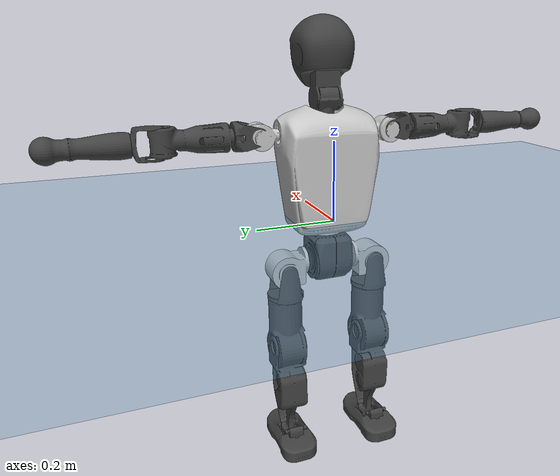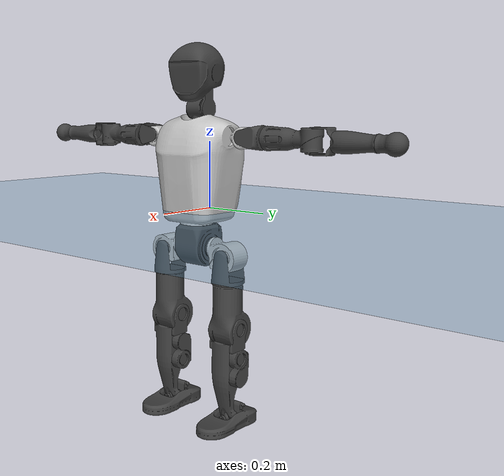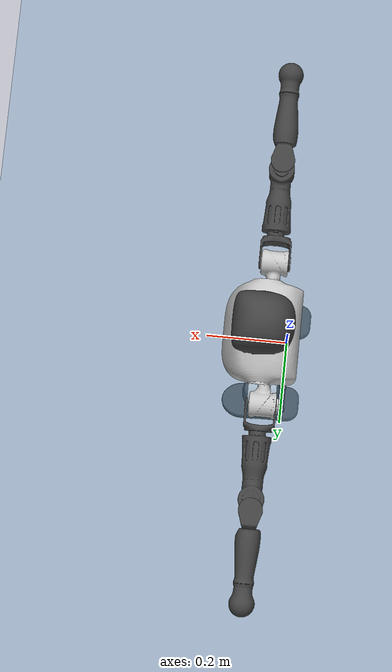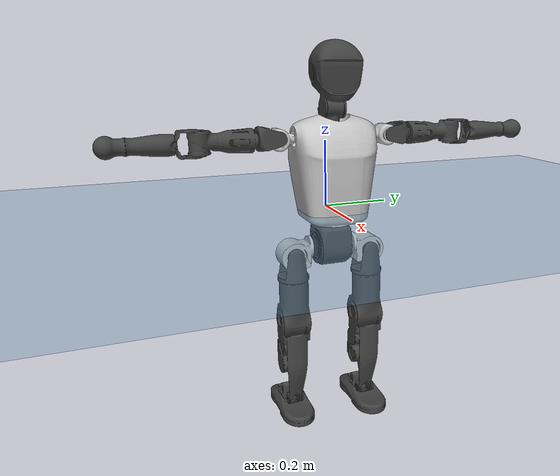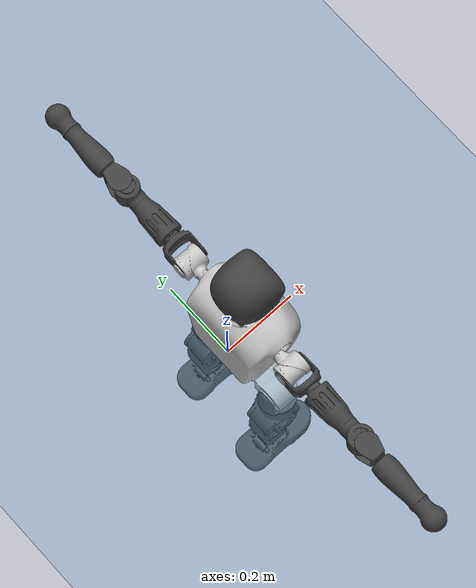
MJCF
<mujoco model="T1">
  <compiler angle="radian" assetdir="assets" balanceinertia="true" inertiafromgeom="false"/>

  <option timestep="0.005" density="1.2" viscosity="2e-05"/>

  <size nkey="1"/>

  <visual>
    <quality shadowsize="8192"/>
    <map shadowclip="0.5"/>
  </visual>

  <default>
    <default class="/">
      <joint armature="0.01" damping="0.01" frictionloss="0.1"/>
      <geom contype="0" conaffinity="0" group="1" solref="-1000 -80"/>
      <site size="0.01 0.005 0.005" group="5"/>
      <general forcelimited="true" biastype="affine" gainprm="25" biasprm="0 -25 -0.6"/>
      <default class="t1">
        <geom rgba="0.25 0.25 0.25 1"/>
        <default class="visual">
          <geom type="mesh" group="2"/>
        </default>
        <default class="collision">
          <geom group="3"/>
        </default>
        <default class="foot">
          <geom size="0.1115 0.05 0.015" type="box" condim="6" group="4" priority="1" solimp="0.015 1 0.015"/>
        </default>
        <default class="reward_collision_sphere">
          <geom group="5" rgba="1 0 0 1"/>
        </default>
      </default>
    </default>
  </default>

  <asset>
    <texture type="skybox" colorspace="auto" name="//unnamed_texture_0" builtin="gradient" rgb1="0.95 0.95 0.95" rgb2="0.95 0.95 0.95" width="100" height="600"/>
    <texture type="2d" colorspace="auto" name="texplane" builtin="checker" rgb1="0.345 0.575 0.748" rgb2="0.345 0.575 0.748" markrgb="1 1 1" width="512" height="512"/>
    <material name="MatPlane" class="/" texture="texplane" texuniform="true" texrepeat="2 2" specular="0.9"/>
    <mesh name="Trunk" class="/" file="Trunk.stl"/>
    <mesh name="H1" class="/" file="H1.stl"/>
    <mesh name="H2" class="/" file="H2.stl"/>
    <mesh name="AL1" class="/" file="AL1.stl"/>
    <mesh name="AL2" class="/" file="AL2.stl"/>
    <mesh name="AL3" class="/" file="AL3.stl"/>
    <mesh name="left_hand_link" class="/" file="left_hand_link.stl"/>
    <mesh name="AR1" class="/" file="AR1.stl"/>
    <mesh name="AR2" class="/" file="AR2.stl"/>
    <mesh name="AR3" class="/" file="AR3.stl"/>
    <mesh name="right_hand_link" class="/" file="right_hand_link.stl"/>
    <mesh name="Waist" class="/" file="Waist.stl"/>
    <mesh name="Hip_Pitch_Left" class="/" file="Hip_Pitch_Left.stl"/>
    <mesh name="Hip_Roll_Left" class="/" file="Hip_Roll_Left.stl"/>
    <mesh name="Hip_Yaw_Left" class="/" file="Hip_Yaw_Left.stl"/>
    <mesh name="Shank_Left" class="/" file="Shank_Left.stl"/>
    <mesh name="Ankle_Cross_Left" class="/" file="Ankle_Cross_Left.stl"/>
    <mesh name="left_foot_link" class="/" file="left_foot_link.stl"/>
    <mesh name="Hip_Pitch_Right" class="/" file="Hip_Pitch_Right.stl"/>
    <mesh name="Hip_Roll_Right" class="/" file="Hip_Roll_Right.stl"/>
    <mesh name="Hip_Yaw_Right" class="/" file="Hip_Yaw_Right.stl"/>
    <mesh name="Shank_Right" class="/" file="Shank_Right.stl"/>
    <mesh name="Ankle_Cross_Right" class="/" file="Ankle_Cross_Right.stl"/>
    <mesh name="right_foot_link" class="/" file="right_foot_link.stl"/>
  </asset>

  <worldbody>
    <geom name="floor" class="/" size="100 100 0.125" type="plane" group="0" material="MatPlane"/>
    <light name="toplight_shadow" class="/" pos="0 0 5" dir="0.0990148 0.0990148 -0.990148" type="directional" ambient="0.04 0.04 0.04" diffuse="0.55 0.55 0.55" specular="0.12 0.12 0.12"/>
    <light name="toplight_fill" class="/" pos="0 0 5" dir="0.0990148 0.0990148 -0.990148" type="directional" castshadow="false" ambient="0.04 0.04 0.04" diffuse="0.3 0.3 0.3" specular="0.08 0.08 0.08"/>
    <body name="trunk" childclass="t1" pos="0.000689741 0.00129265 0.0019523" quat="0.999999 -0.00128998 0.000223316 0.000438559">
      <inertial pos="0.0427101 -0.00061159 0.102709" quat="0.999957 -0.000324862 -0.00927009 6.61553e-05" mass="11.2201" diaginertia="0.0279956 0.160505 0.0477274"/>
      <joint name="//unnamed_joint_0" type="free" armature="0" damping="0" frictionloss="0"/>
      <geom name="//unnamed_geom_1" class="visual" rgba="0.76 0.76 0.76 1" mesh="Trunk"/>
      <geom name="//unnamed_geom_2" class="collision" size="0.0727329 0.0969772 0.145466" pos="0.0474185 0 0.116503" type="box"/>
      <geom name="//unnamed_geom_3" class="reward_collision_sphere" size="0.111524" pos="0.0474185 0 0.0970859"/>
      <geom name="//unnamed_geom_4" class="reward_collision_sphere" size="0.0145466" pos="0.0474185 0.0975927 0"/>
      <geom name="//unnamed_geom_5" class="reward_collision_sphere" size="0.0145466" pos="0.0474185 -0.0975927 0"/>
      <geom name="//unnamed_geom_6" class="reward_collision_sphere" size="0.0145466" pos="0.0474185 0.122852 0.174755"/>
      <geom name="//unnamed_geom_7" class="reward_collision_sphere" size="0.0145466" pos="0.0474185 -0.122852 0.174755"/>
      <site name="imu" pos="0.00893149 -0.00494138 0.00461793" size="0.00969772"/>
      <camera name="track" pos="0 -2.2963 0" quat="0.707107 0.707107 0 0" mode="trackcom"/>
      <camera name="ego_camera" pos="0.0964175 0 0.407761" quat="-0.5 -0.5 0.5 0.5"/>
      <body name="H1" pos="0.0497202 -0.000195456 0.235799" quat="1 -0.000563672 0.00031429 8.32748e-05">
        <inertial pos="-0.00113918 0.000265196 0.0583284" quat="0.763778 -0.01329 0.000773967 0.645342" mass="0.422702" diaginertia="7.83767e-05 0.000452941 0.000131225"/>
        <joint name="AAHead_yaw" pos="0 0 0" axis="0.00261895 0.0012867 0.999996" range="-1.50319 1.51908" armature="0.0100281" damping="0" frictionloss="0.109506"/>
        <geom name="//unnamed_geom_8" class="visual" mesh="H1"/>
        <body name="H2" pos="-0.00427931 0.00237887 0.0599081" quat="0.999999 -0.000618112 -0.000272545 -0.000947173">
          <inertial pos="0.00579609 0.00271206 0.096621" quat="0.988517 0.104991 -0.0751891 -0.0784732" mass="0.587555" diaginertia="0.00061474 0.00378141 0.00147026"/>
          <joint name="Head_pitch" pos="0 0 0" axis="0.00747795 -0.99997 0.00219541" range="-1.23398 0.31241" armature="0.00922847" damping="0" frictionloss="0.0854146"/>
          <geom name="//unnamed_geom_9" class="visual" mesh="H2"/>
          <geom name="//unnamed_geom_10" class="collision" size="0.0775817" pos="0.00790308 0 0.106794"/>
          <geom name="//unnamed_geom_11" class="reward_collision_sphere" size="0.0872795" pos="0.0158062 0 0.0970859"/>
        </body>
      </body>
      <body name="AL1" pos="0.0439491 0.124362 0.214797" quat="1 -0.000406479 -8.07914e-05 -0.000504278">
        <inertial pos="0.00179587 0.0490034 -0.00265122" quat="0.503958 0.49696 -0.50516 0.493832" mass="0.473537" diaginertia="0.000426701 0.00242312 0.000244716"/>
        <joint name="Left_Shoulder_Pitch" pos="0 0 0" axis="-0.00111518 0.999997 0.00231698" range="-3.33349 1.22424" armature="0.00982698" damping="0.0178661" frictionloss="0.0845156"/>
        <geom name="//unnamed_geom_12" class="visual" rgba="0.76 0.76 0.76 1" mesh="AL1"/>
        <body name="AL2" pos="0.00321411 0.0533423 0.00249547" quat="1 -0.000308209 0.00067202 0.000585707">
          <inertial pos="0.000703337 0.0443525 0.00089625" quat="0.484277 0.522144 -0.482982 0.509481" mass="0.144576" diaginertia="0.000118247 0.000669168 0.00015552"/>
          <joint name="Left_Shoulder_Roll" pos="0 0 0" axis="-0.99995 0.00462535 0.00890012" range="-1.59312 1.69167" armature="0.0106782" damping="0.00633923" frictionloss="0.106194"/>
          <geom name="//unnamed_geom_13" class="visual" mesh="AL2"/>
          <body name="AL3" pos="0.00243286 0.0677172 -0.000705138" quat="1 0.000138322 -0.000950113 -0.000179864">
            <inertial pos="-0.00247357 0.098021 -0.001136" quat="0.706148 0.708063 0.000397586 -0.00162779" mass="0.927295" diaginertia="0.00407309 0.0252533 0.000520211"/>
            <joint name="Left_Elbow_Pitch" pos="0 0 0" axis="0.00627205 -0.999977 -0.00257992" range="-2.23373 2.27503" armature="0.00851661" damping="0.0180517" frictionloss="0.109176"/>
            <geom name="//unnamed_geom_14" class="visual" mesh="AL3"/>
            <geom name="//unnamed_geom_15" class="collision" size="0.0290932 0.0727329" pos="0 0.0574074 0" quat="0.707105 0.707108 0 0" type="cylinder"/>
            <geom name="//unnamed_geom_16" class="reward_collision_sphere" size="0.0349118"/>
            <body name="left_hand_link" pos="-0.00102045 0.170836 -0.00267304" quat="0.999999 -0.000630086 -0.000728348 -0.000948444">
              <inertial pos="-0.000434851 0.128151 0.00132677" quat="0.706943 0.707269 0.00143139 -0.000400719" mass="0.279667" diaginertia="0.00250377 0.0159039 0.000179054"/>
              <joint name="Left_Elbow_Yaw" pos="0 0 0" axis="-0.000113489 0.00405658 0.999992" range="-2.39141 -0.00841631" armature="0.0107687" damping="0.0107344" frictionloss="0.103704"/>
              <geom name="//unnamed_geom_17" class="visual" mesh="left_hand_link"/>
              <geom name="//unnamed_geom_18" class="collision" size="0.0290932 0.084855" pos="0 0.149259 0" quat="0.707105 0.707108 0 0" type="cylinder"/>
              <geom name="//unnamed_geom_19" class="reward_collision_sphere" size="0.0484886"/>
              <geom name="//unnamed_geom_20" class="reward_collision_sphere" size="0.033942" pos="0 0.126296 0"/>
              <geom name="//unnamed_geom_21" class="reward_collision_sphere" size="0.033942" pos="0 0.246852 0"/>
            </body>
          </body>
        </body>
      </body>
      <body name="AR1" pos="0.04596 -0.118967 0.212409" quat="1 -0.00053996 0.000294663 0.000384071">
        <inertial pos="-0.00151598 -0.0542491 0.00245644" quat="0.512513 0.493388 -0.505393 0.488341" mass="0.469406" diaginertia="0.000408165 0.0024678 0.000246851"/>
        <joint name="Right_Shoulder_Pitch" pos="0 0 0" axis="0.0117062 -0.999799 -0.0163052" stiffness="5.11391e-05" range="-1.23002 3.33531" armature="0.00877619" damping="0.00251796" frictionloss="0.102436"/>
        <geom name="//unnamed_geom_22" class="visual" rgba="0.76 0.76 0.76 1" mesh="AR1"/>
        <body name="AR2" pos="0.000633719 -0.0500829 0.00431909" quat="1 0.000532386 -0.000422852 -0.000275398">
          <inertial pos="0.000275818 -0.0440046 0.00124886" quat="0.514032 0.487942 -0.509696 0.487744" mass="0.146638" diaginertia="0.000118738 0.000670034 0.000153191"/>
          <joint name="Right_Shoulder_Roll" pos="0 0 0" axis="-0.999998 0.00139751 -0.00120806" range="-1.68303 1.55556" armature="0.00934041" damping="0.0177017" frictionloss="0.0929639"/>
          <geom name="//unnamed_geom_23" class="visual" mesh="AR2"/>
          <body name="AR3" pos="0.00318057 -0.0695516 -0.00320798" quat="0.999999 -0.000859275 0.000806059 -0.000684897">
            <inertial pos="0.00235482 -0.0984945 0.00275186" quat="0.70845 0.70575 0.00378922 -0.000528924" mass="0.92373" diaginertia="0.0039701 0.0260426 0.000537584"/>
            <joint name="Right_Elbow_Pitch" pos="0 0 0" axis="0.00389394 0.999943 -0.00993429" stiffness="0.010593" range="-2.27066 2.22328" armature="0.00958814" damping="0.0078763" frictionloss="0.0920597"/>
            <geom name="//unnamed_geom_24" class="visual" mesh="AR3"/>
            <geom name="//unnamed_geom_25" class="collision" size="0.0290932 0.0727329" pos="0 -0.0574074 0" quat="0.707105 0.707108 0 0" type="cylinder"/>
            <geom name="//unnamed_geom_26" class="reward_collision_sphere" size="0.0349118"/>
            <body name="right_hand_link" pos="-0.000473868 -0.167368 -0.00254134" quat="1 0.000216185 -4.40969e-05 0.000216654">
              <inertial pos="-0.000695701 -0.125378 -0.00188044" quat="0.700757 0.713314 0.00684114 0.00870472" mass="0.28978" diaginertia="0.00252367 0.0152474 0.000185273"/>
              <joint name="Right_Elbow_Yaw" pos="0 0 0" axis="-0.00500257 -0.00577055 0.999971" range="-0.0195688 2.44112" armature="0.0084596" damping="0" frictionloss="0.098685"/>
              <geom name="//unnamed_geom_27" class="visual" mesh="right_hand_link"/>
              <geom name="//unnamed_geom_28" class="collision" size="0.0290932 0.084855" pos="0 -0.149259 0" quat="0.707105 0.707108 0 0" type="cylinder"/>
              <geom name="//unnamed_geom_29" class="reward_collision_sphere" size="0.0484886"/>
              <geom name="//unnamed_geom_30" class="reward_collision_sphere" size="0.033942" pos="0 -0.126296 0"/>
              <geom name="//unnamed_geom_31" class="reward_collision_sphere" size="0.033942" pos="0 -0.246852 0"/>
            </body>
          </body>
        </body>
      </body>
      <body name="Waist" pos="0.0476177 -0.00422068 -0.111877" quat="1 8.87954e-05 -6.39759e-05 2.51706e-05">
        <inertial pos="0.00455315 -0.00121882 0.00990747" quat="0.983908 0.000202558 -0.178678 -0.000538263" mass="2.43637" diaginertia="0.00167001 0.0106779 0.00412158"/>
        <joint name="Waist" pos="0 0 0" axis="0.0132054 -0.00417445 0.999904" range="-1.58029 1.61361" armature="0.00926953" damping="0.0123763" frictionloss="0.0990776"/>
        <geom name="//unnamed_geom_32" class="visual" mesh="Waist"/>
        <body name="Hip_Pitch_Left" pos="0.00227797 0.118695 -0.00124207" quat="1 -2.77885e-05 0.000407118 -0.000227884">
          <inertial pos="-0.000360169 -0.00914815 -0.0149588" quat="0.977107 0.211715 0.0189873 0.00882588" mass="0.918088" diaginertia="0.000569179 0.00292719 0.00111356"/>
          <joint name="Left_Hip_Pitch" pos="0 0 0" axis="-0.00483199 0.999978 0.00459452" range="-1.80579 1.55761" armature="0.00959231" damping="0.00558216" frictionloss="0.0993292"/>
          <geom name="//unnamed_geom_33" class="visual" rgba="0.76 0.76 0.76 1" mesh="Hip_Pitch_Left"/>
          <body name="Hip_Roll_Left" pos="0.00276453 -0.000867953 -0.0213021" quat="1 -0.000216239 -0.000268669 -0.000327779">
            <inertial pos="0.00146461 -0.00234136 -0.0524052" quat="0.704969 0.000423909 0.00371951 0.709228" mass="0.350935" diaginertia="0.000526861 0.00311906 0.000443995"/>
            <joint name="Left_Hip_Roll" pos="0 0 0" axis="-0.999938 -0.00796552 -0.00779773" stiffness="0.00392155" range="-1.55352 0.204879" armature="0.00959071" damping="0.0134628" frictionloss="0.0931719"/>
            <geom name="//unnamed_geom_34" class="visual" mesh="Hip_Roll_Left"/>
            <geom name="//unnamed_geom_35" class="reward_collision_sphere" size="0.0533375"/>
            <body name="Hip_Yaw_Left" pos="0.000443944 0.00172851 -0.0829618" quat="1 4.97281e-05 5.05482e-05 0.000123064">
              <inertial pos="-0.00292597 -0.000954562 -0.085108" quat="0.693474 -0.044705 -0.0384993 0.718062" mass="1.93057" diaginertia="0.00752075 0.0516347 0.0021887"/>
              <joint name="Left_Hip_Yaw" pos="0 0 0" axis="0.000714234 -0.000295582 -1" stiffness="0.0122934" range="-0.986444 1.01427" armature="0.00932045" damping="0" frictionloss="0.101691"/>
              <geom name="//unnamed_geom_36" class="visual" mesh="Hip_Yaw_Left"/>
              <geom name="//unnamed_geom_37" class="collision" size="0.0484886 0.0775817" type="cylinder"/>
              <body name="Shank_Left" pos="-0.0117118 -0.00143052 -0.131429" quat="0.999999 0.000905764 0.000575251 0.00060564">
                <inertial pos="-0.00228402 0.00359956 -0.12375" quat="0.997657 -0.00169172 -0.0196065 0.0655229" mass="1.63878" diaginertia="0.0109725 0.0704316 0.00164421"/>
                <joint name="Left_Knee_Pitch" pos="0 0 0" axis="-0.00153209 0.999888 0.0149192" range="-0.0538389 2.34198" armature="0.010131" damping="0" frictionloss="0.10377"/>
                <geom name="//unnamed_geom_38" class="visual" mesh="Shank_Left"/>
                <geom name="//unnamed_geom_39" class="collision" size="0.0484886 0.0727329" pos="0 0 -0.116503" type="cylinder"/>
                <geom name="//unnamed_geom_40" class="reward_collision_sphere" size="0.0630352"/>
                <body name="Ankle_Cross_Left" pos="0.00221605 -0.00279725 -0.27171" quat="1 4.40419e-05 -9.60829e-05 -0.000149563">
                  <inertial pos="-0.00178224 -0.000357893 -0.00780504" quat="0.453285 0.549218 0.546198 0.441088" mass="0.0711356" diaginertia="8.93563e-06 5.21465e-05 1.00318e-05"/>
                  <joint name="Left_Ankle_Pitch" pos="0 0 0" axis="-0.00479606 0.999988 -0.00016406" range="-0.884789 0.366189" armature="0.00919892" damping="0" frictionloss="0.101382"/>
                  <geom name="//unnamed_geom_41" class="visual" mesh="Ankle_Cross_Left"/>
                  <body name="left_foot_link" pos="-4.61699e-05 -0.000520853 -0.0110326" quat="1 -0.000435773 0.000308505 -0.000196789">
                    <inertial pos="-0.000522016 -0.000465715 -0.0118611" quat="0.00112868 0.621869 0.00139214 0.783119" mass="0.59384" diaginertia="0.00079764 0.0045795 0.00177869"/>
                    <joint name="Left_Ankle_Roll" pos="0 0 0" axis="-0.999939 0.0110097 0.000814778" stiffness="0.00754072" range="-0.461796 0.488248" armature="0.00947712" damping="0" frictionloss="0.0967102"/>
                    <geom name="//unnamed_geom_42" class="visual" mesh="left_foot_link"/>
                    <geom name="left_foot" class="foot" size="0.102006 0.0450557 0.0156323" pos="0.00790308 0 -0.0145629"/>
                    <geom name="//unnamed_geom_44" class="reward_collision_sphere" size="0.0504281" pos="0.00790308 0 -0.0145629"/>
                    <geom name="//unnamed_geom_45" class="reward_collision_sphere" size="0.0290932" pos="0.0750792 -0.0264074 -0.0145629"/>
                    <geom name="//unnamed_geom_46" class="reward_collision_sphere" size="0.0290932" pos="-0.0553215 -0.0264074 -0.0145629"/>
                    <site name="left_foot" class="foot" pos="0.00790308 0 -0.0145629" size="0.00969772"/>
                  </body>
                </body>
              </body>
            </body>
          </body>
        </body>
        <body name="Hip_Pitch_Right" pos="-0.000920503 -0.121168 -0.000996937" quat="1 0.0001269 0.000699943 0.000547112">
          <inertial pos="0.000246272 0.0112281 -0.0146284" quat="0.973635 -0.227966 0.00634624 0.00514009" mass="0.959077" diaginertia="0.00058422 0.00299812 0.00114162"/>
          <joint name="Right_Hip_Pitch" pos="0 0 0" axis="0.000161995 -1 0.000265663" range="-1.5413 1.8133" armature="0.00962822" damping="0.0171616" frictionloss="0.0858697"/>
          <geom name="//unnamed_geom_47" class="visual" rgba="0.76 0.76 0.76 1" mesh="Hip_Pitch_Right"/>
          <body name="Hip_Roll_Right" pos="0.00092501 -0.000619604 -0.019126" quat="1 -0.00010109 -7.35389e-05 0.000210898">
            <inertial pos="-0.00156097 -6.37022e-06 -0.0496214" quat="0.707055 -0.00599819 -0.00611439 0.707107" mass="0.350751" diaginertia="0.000561291 0.0031316 0.000459501"/>
            <joint name="Right_Hip_Roll" pos="0 0 0" axis="-0.99989 0.0123158 -0.00822388" range="-0.176057 1.51318" armature="0.0100421" damping="0" frictionloss="0.0958447"/>
            <geom name="//unnamed_geom_48" class="visual" mesh="Hip_Roll_Right"/>
            <geom name="//unnamed_geom_49" class="reward_collision_sphere" size="0.0533375"/>
            <body name="Hip_Yaw_Right" pos="-0.000314061 0.00128224 -0.0802116" quat="1 -0.000518411 -0.000570581 0.000388695">
              <inertial pos="-0.00497626 -0.0031011 -0.084543" quat="0.714493 -0.0302171 -0.0319374 0.69826" mass="1.98317" diaginertia="0.00811581 0.0541337 0.00224344"/>
              <joint name="Right_Hip_Yaw" pos="0 0 0" axis="0.0120629 -0.0118458 -0.999857" range="-0.974958 1.00617" armature="0.00972962" damping="0.00523466" frictionloss="0.0982018"/>
              <geom name="//unnamed_geom_50" class="visual" mesh="Hip_Yaw_Right"/>
              <geom name="//unnamed_geom_51" class="collision" size="0.0484886 0.0775817" type="cylinder"/>
              <body name="Shank_Right" pos="-0.0133573 -0.000997241 -0.132743" quat="1 -8.72155e-05 3.58238e-05 -3.34497e-05">
                <inertial pos="-0.00127136 0.00277585 -0.120371" quat="0.999359 0.00952808 -0.0248563 -0.0239432" mass="1.70017" diaginertia="0.0108251 0.0721847 0.00174425"/>
                <joint name="Right_Knee_Pitch" pos="0 0 0" axis="-0.00112282 -0.999999 0.0011595" stiffness="0.00967233" range="-2.34904 0.0195364" armature="0.0091317" damping="0.00625818" frictionloss="0.0924599"/>
                <geom name="//unnamed_geom_52" class="visual" mesh="Shank_Right"/>
                <geom name="//unnamed_geom_53" class="collision" size="0.0484886 0.0727329" pos="0 0 -0.116503" type="cylinder"/>
                <geom name="//unnamed_geom_54" class="reward_collision_sphere" size="0.0630352"/>
                <body name="Ankle_Cross_Right" pos="-0.00164884 -0.00254908 -0.271212" quat="0.999999 -0.000756372 0.0011054 9.72875e-05">
                  <inertial pos="-0.00264195 -0.00174859 -0.00835767" quat="0.445213 0.546319 0.557647 0.438578" mass="0.062943" diaginertia="8.54957e-06 4.85517e-05 9.50898e-06"/>
                  <joint name="Right_Ankle_Pitch" pos="0 0 0" axis="-0.00540878 -0.999985 0.00131949" range="-0.420637 0.896318" armature="0.00877574" damping="0.0173859" frictionloss="0.0941308"/>
                  <geom name="//unnamed_geom_55" class="visual" mesh="Ankle_Cross_Right"/>
                  <body name="right_foot_link" pos="-0.00279664 -0.00303354 -0.011013" quat="1 -0.000214137 2.75645e-05 8.43878e-05">
                    <inertial pos="0.000356217 -0.00252235 -0.011503" quat="0.00175224 0.620766 -0.00892666 0.783943" mass="0.605356" diaginertia="0.000836557 0.00465228 0.00181337"/>
                    <joint name="Right_Ankle_Roll" pos="0 0 0" axis="-1 0.000396801 -0.000224216" range="-0.493605 0.428517" armature="0.0104573" damping="0" frictionloss="0.0802138"/>
                    <geom name="//unnamed_geom_56" class="visual" mesh="right_foot_link"/>
                    <geom name="right_foot" class="foot" size="0.10047 0.052712 0.0128383" pos="0.00790308 0 -0.0145629"/>
                    <geom name="//unnamed_geom_58" class="reward_collision_sphere" size="0.0387909"/>
                    <geom name="//unnamed_geom_59" class="reward_collision_sphere" size="0.0290932" pos="0.00790308 0 -0.0145629"/>
                    <geom name="//unnamed_geom_60" class="reward_collision_sphere" size="0.0290932" pos="0.0750792 0.0264074 -0.0145629"/>
                    <geom name="//unnamed_geom_61" class="reward_collision_sphere" size="0.0290932" pos="-0.0553215 0.0264074 -0.0145629"/>
                    <site name="right_foot" class="foot" pos="0.00790308 0 -0.0145629" size="0.00969772"/>
                  </body>
                </body>
              </body>
            </body>
          </body>
        </body>
      </body>
    </body>
  </worldbody>

  <contact>
    <pair class="/" geom1="floor" geom2="left_foot" name="//unnamed_contact_0"/>
    <pair class="/" geom1="floor" geom2="right_foot" name="//unnamed_contact_1"/>
  </contact>

  <actuator>
    <general name="AAHead_yaw" class="/" joint="AAHead_yaw" forcerange="-6.6445 6.6445" gainprm="24.2976" biasprm="0 -24.2976 -0.561812"/>
    <general name="Head_pitch" class="/" joint="Head_pitch" forcerange="-7.39164 7.39164" gainprm="24.2976" biasprm="0 -24.2976 -0.561812"/>
    <general name="Left_Shoulder_Pitch" class="/" joint="Left_Shoulder_Pitch" forcerange="-15.77 15.77" gainprm="24.2976" biasprm="0 -24.2976 -0.561812"/>
    <general name="Left_Shoulder_Roll" class="/" joint="Left_Shoulder_Roll" forcerange="-18.9955 18.9955" gainprm="24.2976" biasprm="0 -24.2976 -0.561812"/>
    <general name="Left_Elbow_Pitch" class="/" joint="Left_Elbow_Pitch" forcerange="-17.9579 17.9579" gainprm="24.2976" biasprm="0 -24.2976 -0.561812"/>
    <general name="Left_Elbow_Yaw" class="/" joint="Left_Elbow_Yaw" forcerange="-17.44 17.44" gainprm="24.2976" biasprm="0 -24.2976 -0.561812"/>
    <general name="Right_Shoulder_Pitch" class="/" joint="Right_Shoulder_Pitch" forcerange="-19.3194 19.3194" gainprm="24.2976" biasprm="0 -24.2976 -0.561812"/>
    <general name="Right_Shoulder_Roll" class="/" joint="Right_Shoulder_Roll" forcerange="-18.5372 18.5372" gainprm="24.2976" biasprm="0 -24.2976 -0.561812"/>
    <general name="Right_Elbow_Pitch" class="/" joint="Right_Elbow_Pitch" forcerange="-17.6341 17.6341" gainprm="24.2976" biasprm="0 -24.2976 -0.561812"/>
    <general name="Right_Elbow_Yaw" class="/" joint="Right_Elbow_Yaw" forcerange="-17.3065 17.3065" gainprm="24.2976" biasprm="0 -24.2976 -0.561812"/>
    <general name="Waist" class="/" joint="Waist" forcerange="-29.8405 29.8405" gainprm="24.2976" biasprm="0 -24.2976 -0.561812"/>
    <general name="Left_Hip_Pitch" class="/" joint="Left_Hip_Pitch" forcerange="-42.3004 42.3004" gainprm="24.2976" biasprm="0 -24.2976 -0.561812"/>
    <general name="Left_Hip_Roll" class="/" joint="Left_Hip_Roll" forcerange="-26.5735 26.5735" gainprm="24.2976" biasprm="0 -24.2976 -0.561812"/>
    <general name="Left_Hip_Yaw" class="/" joint="Left_Hip_Yaw" forcerange="-27.5049 27.5049" gainprm="24.2976" biasprm="0 -24.2976 -0.561812"/>
    <general name="Left_Knee_Pitch" class="/" joint="Left_Knee_Pitch" forcerange="-54.0161 54.0161" gainprm="24.2976" biasprm="0 -24.2976 -0.561812"/>
    <general name="Left_Ankle_Pitch" class="/" joint="Left_Ankle_Pitch" forcerange="-18.2253 18.2253" gainprm="24.2976" biasprm="0 -24.2976 -0.561812"/>
    <general name="Left_Ankle_Roll" class="/" joint="Left_Ankle_Roll" forcerange="-13.4984 13.4984" gainprm="24.2976" biasprm="0 -24.2976 -0.561812"/>
    <general name="Right_Hip_Pitch" class="/" joint="Right_Hip_Pitch" forcerange="-45.2927 45.2927" gainprm="24.2976" biasprm="0 -24.2976 -0.561812"/>
    <general name="Right_Hip_Roll" class="/" joint="Right_Hip_Roll" forcerange="-27.6583 27.6583" gainprm="24.2976" biasprm="0 -24.2976 -0.561812"/>
    <general name="Right_Hip_Yaw" class="/" joint="Right_Hip_Yaw" forcerange="-30.6308 30.6308" gainprm="24.2976" biasprm="0 -24.2976 -0.561812"/>
    <general name="Right_Knee_Pitch" class="/" joint="Right_Knee_Pitch" forcerange="-56.2782 56.2782" gainprm="24.2976" biasprm="0 -24.2976 -0.561812"/>
    <general name="Right_Ankle_Pitch" class="/" joint="Right_Ankle_Pitch" forcerange="-19.1531 19.1531" gainprm="24.2976" biasprm="0 -24.2976 -0.561812"/>
    <general name="Right_Ankle_Roll" class="/" joint="Right_Ankle_Roll" forcerange="-14.3699 14.3699" gainprm="24.2976" biasprm="0 -24.2976 -0.561812"/>
  </actuator>

  <sensor>
    <gyro site="imu" name="imu_angular_velocity"/>
    <velocimeter site="imu" name="imu_linear_velocity"/>
    <framelinvel objtype="site" objname="left_foot" name="left_foot_global_linear_velocity"/>
    <framelinvel objtype="site" objname="right_foot" name="right_foot_global_linear_velocity"/>
  </sensor>

  <keyframe>
    <key name="home" qpos="0 0 0.6385 1 0 0 0 0 0 0 1.4 0 -0.4 0 -1.4 0 0.4 0 -0.4 0 0 0.8 -0.4 0 0.4 0 0 -0.8 0.4 0"/>
  </keyframe>
</mujoco>
